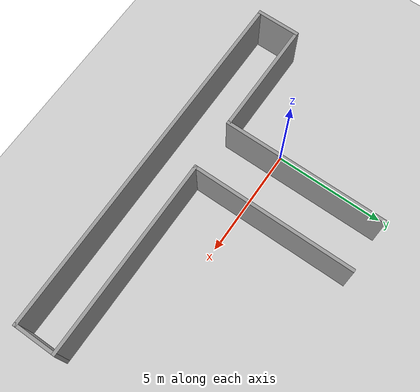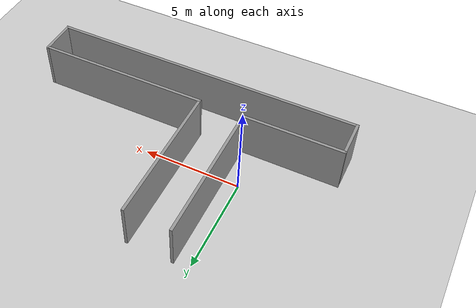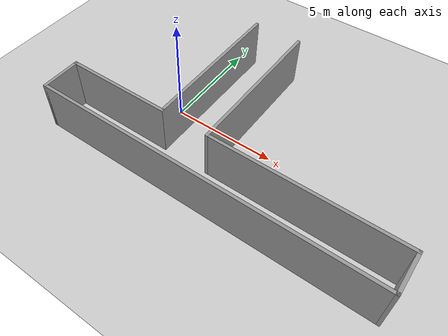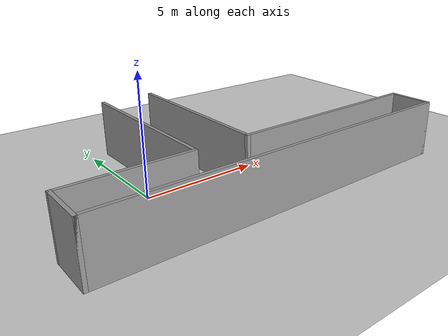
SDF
<sdf version="1.6">
 <world name="default">
  <light name="sun" type="directional">
   <pose>0 0 10 0 -0 0</pose>
   <diffuse>0.8 0.8 0.8 1</diffuse>
   <specular>0.2 0.2 0.2 1</specular>
   <attenuation>
    <range>1000</range>
    <constant>0.9</constant>
    <linear>0.01</linear>
    <quadratic>0.001</quadratic>
   </attenuation>
   <direction>-0.5 0.1 -0.9</direction>
  </light>
  <model name="ground_plane">
   <static>1</static>
   <link name="link">
    <collision name="collision">
     <geometry><plane><normal>0 0 1</normal><size>100 100</size></plane></geometry>
     <surface>
      <contact><collide_bitmask>65535</collide_bitmask></contact>
      <friction><ode><mu>100</mu><mu2>50</mu2></ode></friction>
     </surface>
    </collision>
    <visual name="visual">
     <cast_shadows>0</cast_shadows>
     <geometry><plane><normal>0 0 1</normal><size>100 100</size></plane></geometry>
     <material>
      <script><uri>file://media/materials/scripts/gazebo.material</uri><name>Gazebo/Grey</name></script>
     </material>
    </visual>
   </link>
  </model>
  <gravity>0 0 -9.8</gravity>
  <magnetic_field>6e-06 2.3e-05 -4.2e-05</magnetic_field>
  <atmosphere type="adiabatic"/>
  <physics name="default_physics" default="0" type="ode">
   <max_step_size>0.001</max_step_size>
   <real_time_factor>1</real_time_factor>
   <real_time_update_rate>1000</real_time_update_rate>
  </physics>
  <scene><ambient>0.4 0.4 0.4 1</ambient><background>0.7 0.7 0.7 1</background><shadows>1</shadows></scene>
  <audio><device>default</device></audio>
  <spherical_coordinates>
   <surface_model>EARTH_WGS84</surface_model>
   <latitude_deg>0</latitude_deg>
   <longitude_deg>0</longitude_deg>
   <elevation>0</elevation>
   <heading_deg>0</heading_deg>
  </spherical_coordinates>
  <model name="T">
   <pose>3.905 0.54 0 0 -0 0</pose>
   <link name="Wall_0">
    <collision name="Wall_0_Collision">
     <geometry><box><size>5.25 0.15 2.5</size></box></geometry>
     <pose>0 0 1.25 0 -0 0</pose>
    </collision>
    <visual name="Wall_0_Visual">
     <pose>0 0 1.25 0 -0 0</pose>
     <geometry><box><size>5.25 0.15 2.5</size></box></geometry>
     <material>
      <script><uri>file://media/materials/scripts/gazebo.material</uri><name>Gazebo/Grey</name></script>
      <ambient>1 1 1 1</ambient>
     </material>
     <meta><layer>0</layer></meta>
    </visual>
    <pose>-5.625 -2.75 0 0 -0 3.14159</pose>
   </link>
   <link name="Wall_11">
    <collision name="Wall_11_Collision">
     <geometry><box><size>7.5 0.15 2.5</size></box></geometry>
     <pose>0 0 1.25 0 -0 0</pose>
    </collision>
    <visual name="Wall_11_Visual">
     <pose>0 0 1.25 0 -0 0</pose>
     <geometry><box><size>7.5 0.15 2.5</size></box></geometry>
     <material>
      <script><uri>file://media/materials/scripts/gazebo.material</uri><name>Gazebo/Grey</name></script>
      <ambient>1 1 1 1</ambient>
     </material>
     <meta><layer>0</layer></meta>
    </visual>
    <pose>-3.075 0.925 0 0 -0 1.5708</pose>
   </link>
   <link name="Wall_13">
    <collision name="Wall_13_Collision">
     <geometry><box><size>7.5 0.15 2.5</size></box></geometry>
     <pose>0 0 1.25 0 -0 0</pose>
    </collision>
    <visual name="Wall_13_Visual">
     <pose>0 0 1.25 0 -0 0</pose>
     <geometry><box><size>7.5 0.15 2.5</size></box></geometry>
     <material>
      <script><uri>file://media/materials/scripts/gazebo.material</uri><name>Gazebo/Grey</name></script>
      <ambient>1 1 1 1</ambient>
     </material>
     <meta><layer>0</layer></meta>
    </visual>
    <pose>-0.725 0.925 0 0 -0 1.5708</pose>
   </link>
   <link name="Wall_2">
    <collision name="Wall_2_Collision">
     <geometry><box><size>2 0.15 2.5</size></box></geometry>
     <pose>0 0 1.25 0 -0 0</pose>
    </collision>
    <visual name="Wall_2_Visual">
     <pose>0 0 1.25 0 -0 0</pose>
     <geometry><box><size>2 0.15 2.5</size></box></geometry>
     <material>
      <script><uri>file://media/materials/scripts/gazebo.material</uri><name>Gazebo/Grey</name></script>
      <ambient>1 1 1 1</ambient>
     </material>
     <meta><layer>0</layer></meta>
    </visual>
    <pose>-8.175 -3.675 0 0 -0 -1.5708</pose>
   </link>
   <link name="Wall_4">
    <collision name="Wall_4_Collision">
     <geometry><box><size>16.5 0.15 2.5</size></box></geometry>
     <pose>0 0 1.25 0 -0 0</pose>
    </collision>
    <visual name="Wall_4_Visual">
     <pose>0 0 1.25 0 -0 0</pose>
     <geometry><box><size>16.5 0.15 2.5</size></box></geometry>
     <material>
      <script><uri>file://media/materials/scripts/gazebo.material</uri><name>Gazebo/Grey</name></script>
      <ambient>1 1 1 1</ambient>
     </material>
     <meta><layer>0</layer></meta>
    </visual>
    <pose>-0 -4.6 0 0 -0 0</pose>
   </link>
   <link name="Wall_5">
    <collision name="Wall_5_Collision">
     <geometry><box><size>2 0.15 2.5</size></box></geometry>
     <pose>0 0 1.25 0 -0 0</pose>
    </collision>
    <visual name="Wall_5_Visual">
     <pose>0 0 1.25 0 -0 0</pose>
     <geometry><box><size>2 0.15 2.5</size></box></geometry>
     <material>
      <script><uri>file://media/materials/scripts/gazebo.material</uri><name>Gazebo/Grey</name></script>
      <ambient>1 1 1 1</ambient>
     </material>
     <meta><layer>0</layer></meta>
    </visual>
    <pose>8.175 -3.675 0 0 -0 1.5708</pose>
   </link>
   <link name="Wall_9">
    <collision name="Wall_9_Collision">
     <geometry><box><size>9.05 0.15 2.5</size></box></geometry>
     <pose>0 0 1.25 0 -0 0</pose>
    </collision>
    <visual name="Wall_9_Visual">
     <pose>0 0 1.25 0 -0 0</pose>
     <geometry><box><size>9.05 0.15 2.5</size></box></geometry>
     <material>
      <script><uri>file://media/materials/scripts/gazebo.material</uri><name>Gazebo/Grey</name></script>
      <ambient>1 1 1 1</ambient>
     </material>
     <meta><layer>0</layer></meta>
    </visual>
    <pose>3.725 -2.75 0 0 -0 3.14159</pose>
   </link>
   <static>1</static>
  </model>
 </world>
</sdf>
